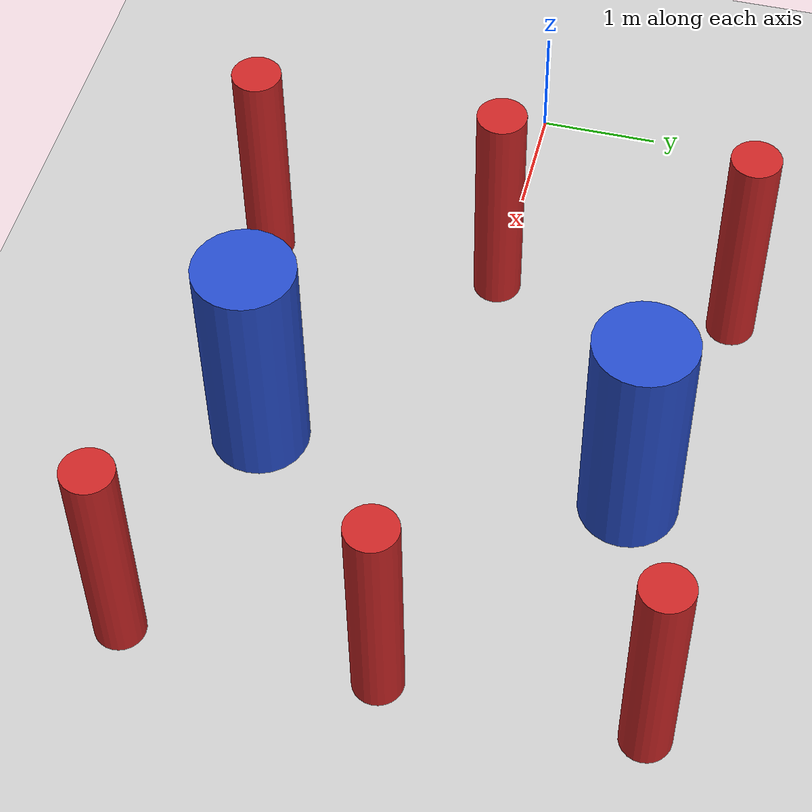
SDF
<sdf version='1.7'>
  <world name='default'>
    <light name='sun' type='directional'>
      <cast_shadows>1</cast_shadows>
      <pose>0 0 10 0 -0 0</pose>
      <diffuse>0.8 0.8 0.8 1</diffuse>
      <specular>0.2 0.2 0.2 1</specular>
      <attenuation>
        <range>1000</range>
        <constant>0.9</constant>
        <linear>0.01</linear>
        <quadratic>0.001</quadratic>
      </attenuation>
      <direction>-0.5 0.1 -0.9</direction>
      <spot>
        <inner_angle>0</inner_angle>
        <outer_angle>0</outer_angle>
        <falloff>0</falloff>
      </spot>
    </light>
    <model name='ground_plane'>
      <static>1</static>
      <link name='link'>
        <collision name='collision'>
          <geometry>
            <plane>
              <normal>0 0 1</normal>
              <size>100 100</size>
            </plane>
          </geometry>
          <surface>
            <contact>
              <collide_bitmask>65535</collide_bitmask>
              <ode/>
            </contact>
            <friction>
              <ode>
                <mu>100</mu>
                <mu2>50</mu2>
              </ode>
              <torsional>
                <ode/>
              </torsional>
            </friction>
            <bounce/>
          </surface>
          <max_contacts>10</max_contacts>
        </collision>
        <visual name='visual'>
          <cast_shadows>0</cast_shadows>
          <geometry>
            <plane>
              <normal>0 0 1</normal>
              <size>100 100</size>
            </plane>
          </geometry>
          <material>
            <script>
              <uri>file://media/materials/scripts/gazebo.material</uri>
              <name>Gazebo/Grey</name>
            </script>
          </material>
        </visual>
        <self_collide>0</self_collide>
        <enable_wind>0</enable_wind>
        <kinematic>0</kinematic>
      </link>
    </model>
    <gravity>0 0 -9.8</gravity>
    <magnetic_field>6e-06 2.3e-05 -4.2e-05</magnetic_field>
    <atmosphere type='adiabatic'/>
    <physics type='ode'>
      <max_step_size>0.001</max_step_size>
      <real_time_factor>1</real_time_factor>
      <real_time_update_rate>1000</real_time_update_rate>
    </physics>
    <scene>
      <ambient>0.4 0.4 0.4 1</ambient>
      <background>0.7 0.7 0.7 1</background>
      <shadows>1</shadows>
    </scene>
    <wind/>
    <spherical_coordinates>
      <surface_model>EARTH_WGS84</surface_model>
      <latitude_deg>0</latitude_deg>
      <longitude_deg>0</longitude_deg>
      <elevation>0</elevation>
      <heading_deg>0</heading_deg>
    </spherical_coordinates>
    <model name='cylinder_20cm'>
      <link name='link'>
        <visual name='visual'>
          <geometry>
            <cylinder>
              <radius>0.2</radius>
              <length>2</length>
            </cylinder>
          </geometry>
          <material>
            <script>
              <uri>file://media/materials/scripts/gazebo.material</uri>
              <name>Gazebo/Red</name>
            </script>
          </material>
        </visual>
        <collision name='collision'>
          <geometry>
            <cylinder>
              <radius>0.2</radius>
              <length>2</length>
            </cylinder>
          </geometry>
          <max_contacts>10</max_contacts>
          <surface>
            <contact>
              <ode/>
            </contact>
            <bounce/>
            <friction>
              <torsional>
                <ode/>
              </torsional>
              <ode/>
            </friction>
          </surface>
        </collision>
        <inertial>
          <mass>1</mass>
          <inertia>
            <ixx>0.3358</ixx>
            <ixy>0</ixy>
            <ixz>0</ixz>
            <iyy>0.3358</iyy>
            <iyz>0</iyz>
            <izz>0.005</izz>
          </inertia>
          <pose>0 0 0 0 -0 0</pose>
        </inertial>
        <self_collide>0</self_collide>
        <enable_wind>0</enable_wind>
        <kinematic>0</kinematic>
      </link>
      <pose>2 2 1 0 -0 0</pose>
      <static>1</static>
    </model>
    <model name='cylinder_20cm_0'>
      <link name='link'>
        <visual name='visual'>
          <geometry>
            <cylinder>
              <radius>0.2</radius>
              <length>2</length>
            </cylinder>
          </geometry>
          <material>
            <script>
              <uri>file://media/materials/scripts/gazebo.material</uri>
              <name>Gazebo/Red</name>
            </script>
          </material>
        </visual>
        <collision name='collision'>
          <geometry>
            <cylinder>
              <radius>0.2</radius>
              <length>2</length>
            </cylinder>
          </geometry>
          <max_contacts>10</max_contacts>
          <surface>
            <contact>
              <ode/>
            </contact>
            <bounce/>
            <friction>
              <torsional>
                <ode/>
              </torsional>
              <ode/>
            </friction>
          </surface>
        </collision>
        <inertial>
          <mass>1</mass>
          <inertia>
            <ixx>0.3358</ixx>
            <ixy>0</ixy>
            <ixz>0</ixz>
            <iyy>0.3358</iyy>
            <iyz>0</iyz>
            <izz>0.005</izz>
          </inertia>
          <pose>0 0 0 0 -0 0</pose>
        </inertial>
        <self_collide>0</self_collide>
        <enable_wind>0</enable_wind>
        <kinematic>0</kinematic>
      </link>
      <pose>2 0 1 0 -0 0</pose>
      <static>1</static>
    </model>
    <model name='cylinder_20cm_1'>
      <link name='link'>
        <visual name='visual'>
          <geometry>
            <cylinder>
              <radius>0.2</radius>
              <length>2</length>
            </cylinder>
          </geometry>
          <material>
            <script>
              <uri>file://media/materials/scripts/gazebo.material</uri>
              <name>Gazebo/Red</name>
            </script>
          </material>
        </visual>
        <collision name='collision'>
          <geometry>
            <cylinder>
              <radius>0.2</radius>
              <length>2</length>
            </cylinder>
          </geometry>
          <max_contacts>10</max_contacts>
          <surface>
            <contact>
              <ode/>
            </contact>
            <bounce/>
            <friction>
              <torsional>
                <ode/>
              </torsional>
              <ode/>
            </friction>
          </surface>
        </collision>
        <inertial>
          <mass>1</mass>
          <inertia>
            <ixx>0.3358</ixx>
            <ixy>0</ixy>
            <ixz>0</ixz>
            <iyy>0.3358</iyy>
            <iyz>0</iyz>
            <izz>0.005</izz>
          </inertia>
          <pose>0 0 0 0 -0 0</pose>
        </inertial>
        <self_collide>0</self_collide>
        <enable_wind>0</enable_wind>
        <kinematic>0</kinematic>
      </link>
      <pose>2 -2 1 0 -0 0</pose>
      <static>1</static>
    </model>
    <model name='cylinder_20cm_2'>
      <link name='link'>
        <visual name='visual'>
          <geometry>
            <cylinder>
              <radius>0.2</radius>
              <length>2</length>
            </cylinder>
          </geometry>
          <material>
            <script>
              <uri>file://media/materials/scripts/gazebo.material</uri>
              <name>Gazebo/Red</name>
            </script>
          </material>
        </visual>
        <collision name='collision'>
          <geometry>
            <cylinder>
              <radius>0.2</radius>
              <length>2</length>
            </cylinder>
          </geometry>
          <max_contacts>10</max_contacts>
          <surface>
            <contact>
              <ode/>
            </contact>
            <bounce/>
            <friction>
              <torsional>
                <ode/>
              </torsional>
              <ode/>
            </friction>
          </surface>
        </collision>
        <inertial>
          <mass>1</mass>
          <inertia>
            <ixx>0.3358</ixx>
            <ixy>0</ixy>
            <ixz>0</ixz>
            <iyy>0.3358</iyy>
            <iyz>0</iyz>
            <izz>0.005</izz>
          </inertia>
          <pose>0 0 0 0 -0 0</pose>
        </inertial>
        <self_collide>0</self_collide>
        <enable_wind>0</enable_wind>
        <kinematic>0</kinematic>
      </link>
      <pose>6 2 1 0 -0 0</pose>
      <static>1</static>
    </model>
    <model name='cylinder_20cm_3'>
      <link name='link'>
        <visual name='visual'>
          <geometry>
            <cylinder>
              <radius>0.2</radius>
              <length>2</length>
            </cylinder>
          </geometry>
          <material>
            <script>
              <uri>file://media/materials/scripts/gazebo.material</uri>
              <name>Gazebo/Red</name>
            </script>
          </material>
        </visual>
        <collision name='collision'>
          <geometry>
            <cylinder>
              <radius>0.2</radius>
              <length>2</length>
            </cylinder>
          </geometry>
          <max_contacts>10</max_contacts>
          <surface>
            <contact>
              <ode/>
            </contact>
            <bounce/>
            <friction>
              <torsional>
                <ode/>
              </torsional>
              <ode/>
            </friction>
          </surface>
        </collision>
        <inertial>
          <mass>1</mass>
          <inertia>
            <ixx>0.3358</ixx>
            <ixy>0</ixy>
            <ixz>0</ixz>
            <iyy>0.3358</iyy>
            <iyz>0</iyz>
            <izz>0.005</izz>
          </inertia>
          <pose>0 0 0 0 -0 0</pose>
        </inertial>
        <self_collide>0</self_collide>
        <enable_wind>0</enable_wind>
        <kinematic>0</kinematic>
      </link>
      <pose>6 0 1 0 -0 0</pose>
      <static>1</static>
    </model>
    <model name='cylinder_20cm_4'>
      <link name='link'>
        <visual name='visual'>
          <geometry>
            <cylinder>
              <radius>0.2</radius>
              <length>2</length>
            </cylinder>
          </geometry>
          <material>
            <script>
              <uri>file://media/materials/scripts/gazebo.material</uri>
              <name>Gazebo/Red</name>
            </script>
          </material>
        </visual>
        <collision name='collision'>
          <geometry>
            <cylinder>
              <radius>0.2</radius>
              <length>2</length>
            </cylinder>
          </geometry>
          <max_contacts>10</max_contacts>
          <surface>
            <contact>
              <ode/>
            </contact>
            <bounce/>
            <friction>
              <torsional>
                <ode/>
              </torsional>
              <ode/>
            </friction>
          </surface>
        </collision>
        <inertial>
          <mass>1</mass>
          <inertia>
            <ixx>0.3358</ixx>
            <ixy>0</ixy>
            <ixz>0</ixz>
            <iyy>0.3358</iyy>
            <iyz>0</iyz>
            <izz>0.005</izz>
          </inertia>
          <pose>0 0 0 0 -0 0</pose>
        </inertial>
        <self_collide>0</self_collide>
        <enable_wind>0</enable_wind>
        <kinematic>0</kinematic>
      </link>
      <pose>6 -2 1 0 -0 0</pose>
      <static>1</static>
    </model>
    <model name='cylinder_40cm'>
      <link name='link'>
        <visual name='visual'>
          <geometry>
            <cylinder>
              <radius>0.4</radius>
              <length>2</length>
            </cylinder>
          </geometry>
          <material>
            <script>
              <uri>file://media/materials/scripts/gazebo.material</uri>
              <name>Gazebo/Blue</name>
            </script>
          </material>
        </visual>
        <collision name='collision'>
          <geometry>
            <cylinder>
              <radius>0.4</radius>
              <length>2</length>
            </cylinder>
          </geometry>
          <max_contacts>10</max_contacts>
          <surface>
            <contact>
              <ode/>
            </contact>
            <bounce/>
            <friction>
              <torsional>
                <ode/>
              </torsional>
              <ode/>
            </friction>
          </surface>
        </collision>
        <inertial>
          <mass>1</mass>
          <inertia>
            <ixx>0.3358</ixx>
            <ixy>0</ixy>
            <ixz>0</ixz>
            <iyy>0.3358</iyy>
            <iyz>0</iyz>
            <izz>0.005</izz>
          </inertia>
          <pose>0 0 0 0 -0 0</pose>
        </inertial>
        <self_collide>0</self_collide>
        <enable_wind>0</enable_wind>
        <kinematic>0</kinematic>
      </link>
      <pose>4 1.5 1 0 -0 0</pose>
      <static>1</static>
    </model>
    <model name='cylinder_40cm_0'>
      <link name='link'>
        <visual name='visual'>
          <geometry>
            <cylinder>
              <radius>0.4</radius>
              <length>2</length>
            </cylinder>
          </geometry>
          <material>
            <script>
              <uri>file://media/materials/scripts/gazebo.material</uri>
              <name>Gazebo/Blue</name>
            </script>
          </material>
        </visual>
        <collision name='collision'>
          <geometry>
            <cylinder>
              <radius>0.4</radius>
              <length>2</length>
            </cylinder>
          </geometry>
          <max_contacts>10</max_contacts>
          <surface>
            <contact>
              <ode/>
            </contact>
            <bounce/>
            <friction>
              <torsional>
                <ode/>
              </torsional>
              <ode/>
            </friction>
          </surface>
        </collision>
        <inertial>
          <mass>1</mass>
          <inertia>
            <ixx>0.3358</ixx>
            <ixy>0</ixy>
            <ixz>0</ixz>
            <iyy>0.3358</iyy>
            <iyz>0</iyz>
            <izz>0.005</izz>
          </inertia>
          <pose>0 0 0 0 -0 0</pose>
        </inertial>
        <self_collide>0</self_collide>
        <enable_wind>0</enable_wind>
        <kinematic>0</kinematic>
      </link>
      <pose>4 -1.5 1 0 -0 0</pose>
      <static>1</static>
    </model>
  </world>
</sdf>
